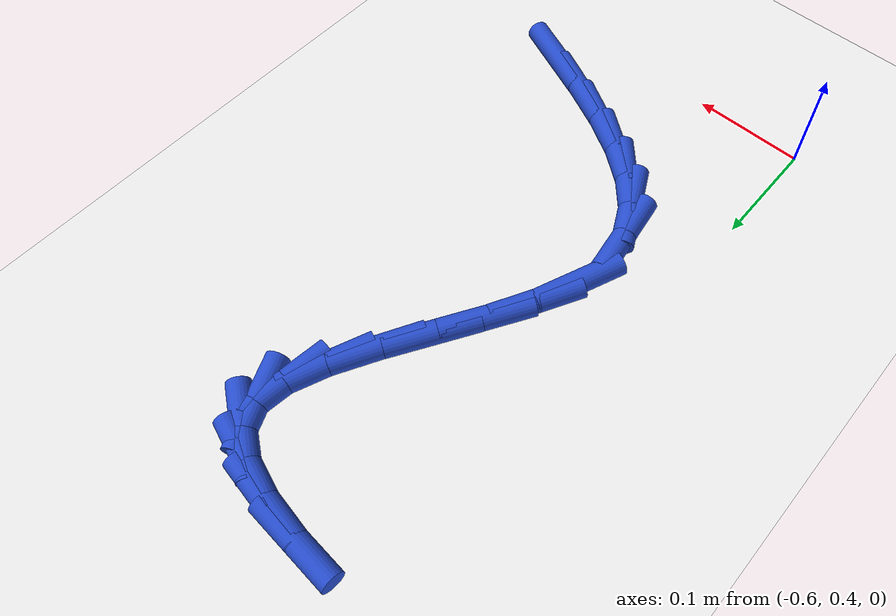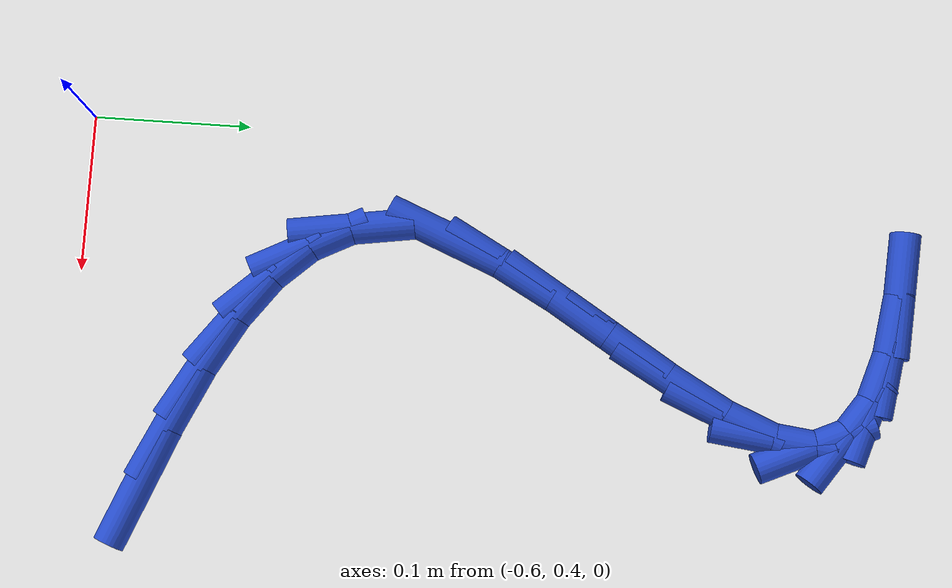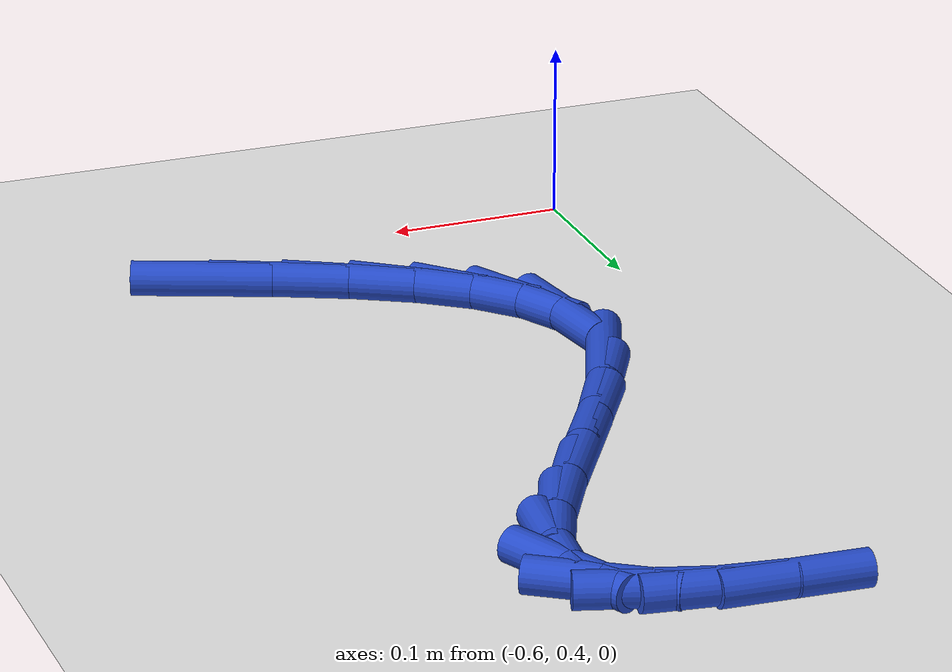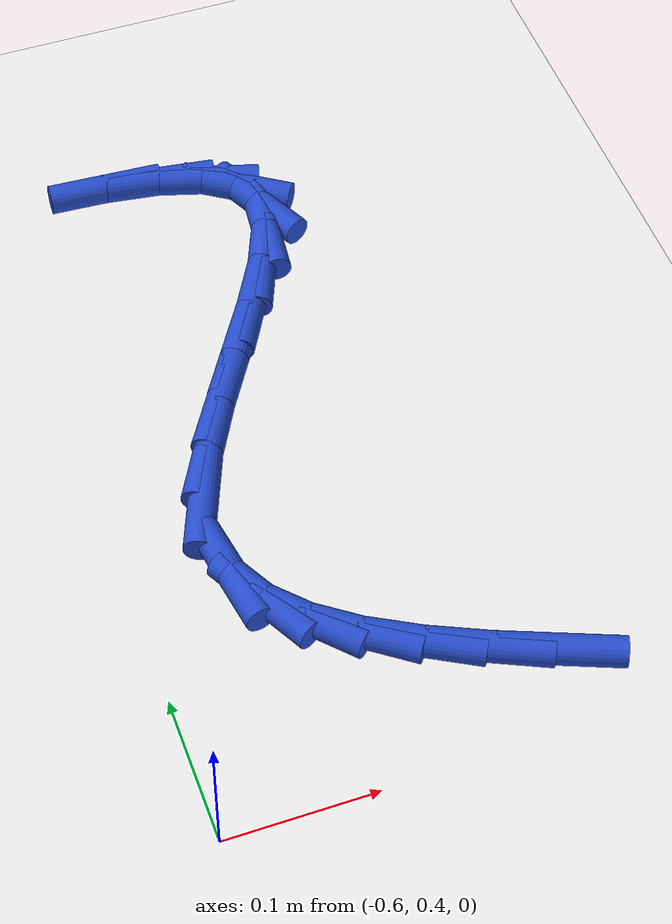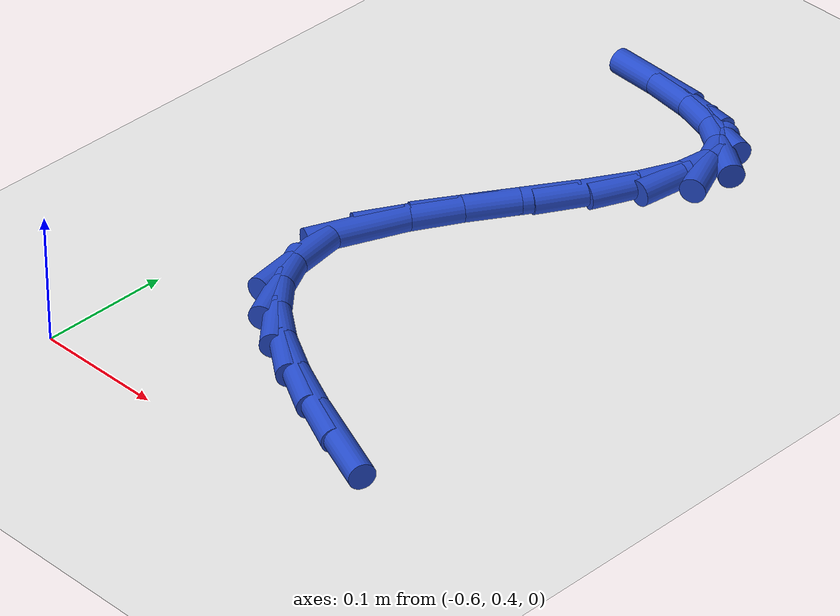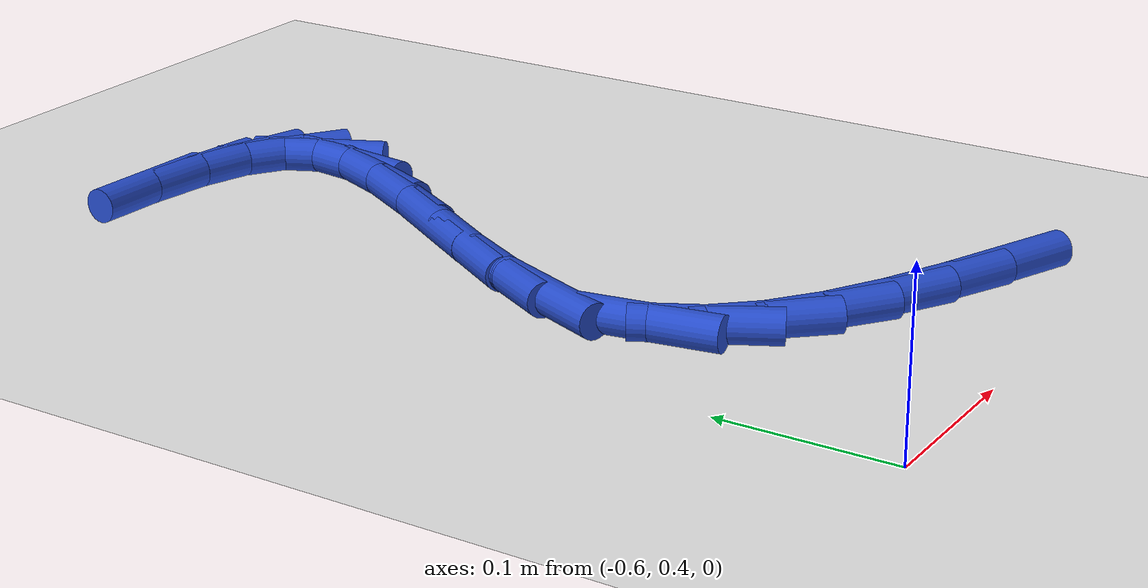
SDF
<sdf version="1.6">
 <world name="default">
  <model name="ground_plane">
   <static>1</static>
   <link name="link">
    <collision name="collision">
     <geometry><plane><normal>0 0 1</normal><size>100 100</size></plane></geometry>
     <surface><friction><ode><mu>100</mu><mu2>50</mu2></ode></friction></surface>
    </collision>
    <visual name="visual">
     <cast_shadows>0</cast_shadows>
     <geometry><plane><normal>0 0 1</normal><size>100 100</size></plane></geometry>
     <material>
      <script><uri>file://media/materials/scripts/gazebo.material</uri><name>Gazebo/WhiteGlow</name></script>
     </material>
    </visual>
   </link>
  </model>
  <model name="line">
   <link name="link_16">
    <pose>-0.36530259409857374 0.4503847371893793 0.01 0 1.57 -0.3857470873406848</pose>
    <collision name="collision">
     <geometry><cylinder><radius>0.01</radius><length>0.08</length></cylinder></geometry>
    </collision>
    <visual name="visual">
     <material>
      <script><name>Gazebo/Blue</name><uri>file://media/materials/scripts/gazebo.material</uri></script>
     </material>
     <geometry><cylinder><radius>0.01</radius><length>0.08</length></cylinder></geometry>
    </visual>
   </link>
   <link name="link_17">
    <pose>-0.40577187990694114 0.4668189924377148 0.01 0 1.57 -0.43536456978689764</pose>
    <collision name="collision">
     <geometry><cylinder><radius>0.01</radius><length>0.08</length></cylinder></geometry>
    </collision>
    <visual name="visual">
     <material>
      <script><name>Gazebo/Blue</name><uri>file://media/materials/scripts/gazebo.material</uri></script>
     </material>
     <geometry><cylinder><radius>0.01</radius><length>0.08</length></cylinder></geometry>
    </visual>
   </link>
   <link name="link_18">
    <pose>-0.4429136612017323 0.4840947498094735 0.01 0 1.57 -0.5161694084390565</pose>
    <collision name="collision">
     <geometry><cylinder><radius>0.01</radius><length>0.08</length></cylinder></geometry>
    </collision>
    <visual name="visual">
     <material>
      <script><name>Gazebo/Blue</name><uri>file://media/materials/scripts/gazebo.material</uri></script>
     </material>
     <geometry><cylinder><radius>0.01</radius><length>0.08</length></cylinder></geometry>
    </visual>
   </link>
   <link name="link_19">
    <pose>-0.4756546732924673 0.5026748345785776 0.01 0 1.57 -0.6410792351259087</pose>
    <collision name="collision">
     <geometry><cylinder><radius>0.01</radius><length>0.08</length></cylinder></geometry>
    </collision>
    <visual name="visual">
     <material>
      <script><name>Gazebo/Blue</name><uri>file://media/materials/scripts/gazebo.material</uri></script>
     </material>
     <geometry><cylinder><radius>0.01</radius><length>0.08</length></cylinder></geometry>
    </visual>
   </link>
   <link name="link_20">
    <pose>-0.5029216514886659 0.5230220720189499 0.01 0 1.57 -0.8282741564114585</pose>
    <collision name="collision">
     <geometry><cylinder><radius>0.01</radius><length>0.08</length></cylinder></geometry>
    </collision>
    <visual name="visual">
     <material>
      <script><name>Gazebo/Blue</name><uri>file://media/materials/scripts/gazebo.material</uri></script>
     </material>
     <geometry><cylinder><radius>0.01</radius><length>0.08</length></cylinder></geometry>
    </visual>
   </link>
   <link name="link_21">
    <pose>-0.5236413310998482 0.5455992874045125 0.01 0 1.57 -1.092564170374915</pose>
    <collision name="collision">
     <geometry><cylinder><radius>0.01</radius><length>0.08</length></cylinder></geometry>
    </collision>
    <visual name="visual">
     <material>
      <script><name>Gazebo/Blue</name><uri>file://media/materials/scripts/gazebo.material</uri></script>
     </material>
     <geometry><cylinder><radius>0.01</radius><length>0.08</length></cylinder></geometry>
    </visual>
   </link>
   <link name="link_22">
    <pose>-0.5367404474355342 0.5708693060091881 0.01 0 1.57 -1.4170436256660386</pose>
    <collision name="collision">
     <geometry><cylinder><radius>0.01</radius><length>0.08</length></cylinder></geometry>
    </collision>
    <visual name="visual">
     <material>
      <script><name>Gazebo/Blue</name><uri>file://media/materials/scripts/gazebo.material</uri></script>
     </material>
     <geometry><cylinder><radius>0.01</radius><length>0.08</length></cylinder></geometry>
    </visual>
   </link>
   <link name="link_24">
    <pose>-0.5358245843745766 0.6313211867923071 0.01 0 1.57 1.1845515713231947</pose>
    <collision name="collision">
     <geometry><cylinder><radius>0.01</radius><length>0.08</length></cylinder></geometry>
    </collision>
    <visual name="visual">
     <material>
      <script><name>Gazebo/Blue</name><uri>file://media/materials/scripts/gazebo.material</uri></script>
     </material>
     <geometry><cylinder><radius>0.01</radius><length>0.08</length></cylinder></geometry>
    </visual>
   </link>
   <link name="link_25">
    <pose>-0.5214622480534541 0.6666379522033875 0.01 0 1.57 1.0700203127087764</pose>
    <collision name="collision">
     <geometry><cylinder><radius>0.01</radius><length>0.08</length></cylinder></geometry>
    </collision>
    <visual name="visual">
     <material>
      <script><name>Gazebo/Blue</name><uri>file://media/materials/scripts/gazebo.material</uri></script>
     </material>
     <geometry><cylinder><radius>0.01</radius><length>0.08</length></cylinder></geometry>
    </visual>
   </link>
   <link name="link_26">
    <pose>-0.5010585170572174 0.7039179420340143 0.01 0 1.57 1.0192693626224043</pose>
    <collision name="collision">
     <geometry><cylinder><radius>0.01</radius><length>0.08</length></cylinder></geometry>
    </collision>
    <visual name="visual">
     <material>
      <script><name>Gazebo/Blue</name><uri>file://media/materials/scripts/gazebo.material</uri></script>
     </material>
     <geometry><cylinder><radius>0.01</radius><length>0.08</length></cylinder></geometry>
    </visual>
   </link>
   <link name="link_27">
    <pose>-0.47777650290420265 0.7417620682649929 0.01 0 1.57 1.0147961115229551</pose>
    <collision name="collision">
     <geometry><cylinder><radius>0.01</radius><length>0.08</length></cylinder></geometry>
    </collision>
    <visual name="visual">
     <material>
      <script><name>Gazebo/Blue</name><uri>file://media/materials/scripts/gazebo.material</uri></script>
     </material>
     <geometry><cylinder><radius>0.01</radius><length>0.08</length></cylinder></geometry>
    </visual>
   </link>
   <link name="link_28">
    <pose>-0.4547793171127471 0.7787712428771287 0.01 0 1.57 1.058663958540398</pose>
    <collision name="collision">
     <geometry><cylinder><radius>0.01</radius><length>0.08</length></cylinder></geometry>
    </collision>
    <visual name="visual">
     <material>
      <script><name>Gazebo/Blue</name><uri>file://media/materials/scripts/gazebo.material</uri></script>
     </material>
     <geometry><cylinder><radius>0.01</radius><length>0.08</length></cylinder></geometry>
    </visual>
   </link>
   <link name="link_29">
    <pose>-0.4352300712011868 0.8135463778512266 0.01 0 1.57 1.1770355614612664</pose>
    <collision name="collision">
     <geometry><cylinder><radius>0.01</radius><length>0.08</length></cylinder></geometry>
    </collision>
    <visual name="visual">
     <material>
      <script><name>Gazebo/Blue</name><uri>file://media/materials/scripts/gazebo.material</uri></script>
     </material>
     <geometry><cylinder><radius>0.01</radius><length>0.08</length></cylinder></geometry>
    </visual>
   </link>
   <link name="link_30">
    <pose>-0.4222918766878586 0.844688385168092 0.01 0 1.57 1.450202538677667</pose>
    <collision name="collision">
     <geometry><cylinder><radius>0.01</radius><length>0.08</length></cylinder></geometry>
    </collision>
    <visual name="visual">
     <material>
      <script><name>Gazebo/Blue</name><uri>file://media/materials/scripts/gazebo.material</uri></script>
     </material>
     <geometry><cylinder><radius>0.01</radius><length>0.08</length></cylinder></geometry>
    </visual>
   </link>
   <link name="link_31">
    <pose>-0.41912784509109924 0.8707981768085302 0.01 0 1.57 -1.139373479864448</pose>
    <collision name="collision">
     <geometry><cylinder><radius>0.01</radius><length>0.08</length></cylinder></geometry>
    </collision>
    <visual name="visual">
     <material>
      <script><name>Gazebo/Blue</name><uri>file://media/materials/scripts/gazebo.material</uri></script>
     </material>
     <geometry><cylinder><radius>0.01</radius><length>0.08</length></cylinder></geometry>
    </visual>
   </link>
   <link name="link_32">
    <pose>-0.4283096279183051 0.8907436468919423 0.01 0 1.57 -0.5990839533540951</pose>
    <collision name="collision">
     <geometry><cylinder><radius>0.01</radius><length>0.08</length></cylinder></geometry>
    </collision>
    <visual name="visual">
     <material>
      <script><name>Gazebo/Blue</name><uri>file://media/materials/scripts/gazebo.material</uri></script>
     </material>
     <geometry><cylinder><radius>0.01</radius><length>0.08</length></cylinder></geometry>
    </visual>
   </link>
   <link name="link_33">
    <pose>-0.44905339026635877 0.9049073395924007 0.01 0 1.57 -0.2973705738031606</pose>
    <collision name="collision">
     <geometry><cylinder><radius>0.01</radius><length>0.08</length></cylinder></geometry>
    </collision>
    <visual name="visual">
     <material>
      <script><name>Gazebo/Blue</name><uri>file://media/materials/scripts/gazebo.material</uri></script>
     </material>
     <geometry><cylinder><radius>0.01</radius><length>0.08</length></cylinder></geometry>
    </visual>
   </link>
   <link name="link_34">
    <pose>-0.4793934488181903 0.9142052796426235 0.01 0 1.57 -0.13995081667476847</pose>
    <collision name="collision">
     <geometry><cylinder><radius>0.01</radius><length>0.08</length></cylinder></geometry>
    </collision>
    <visual name="visual">
     <material>
      <script><name>Gazebo/Blue</name><uri>file://media/materials/scripts/gazebo.material</uri></script>
     </material>
     <geometry><cylinder><radius>0.01</radius><length>0.08</length></cylinder></geometry>
    </visual>
   </link>
   <link name="link_35">
    <pose>-0.5173627994956134 0.9195540879603986 0.01 0 1.57 -0.05303777817666003</pose>
    <collision name="collision">
     <geometry><cylinder><radius>0.01</radius><length>0.08</length></cylinder></geometry>
    </collision>
    <visual name="visual">
     <material>
      <script><name>Gazebo/Blue</name><uri>file://media/materials/scripts/gazebo.material</uri></script>
     </material>
     <geometry><cylinder><radius>0.01</radius><length>0.08</length></cylinder></geometry>
    </visual>
   </link>
  </model>
 </world>
</sdf>
